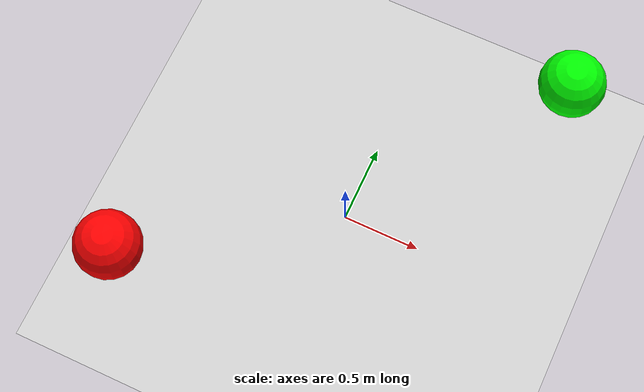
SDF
<?xml version="1.0" ?>
<!--
  Multiantenna Gnss plugin demo

  Subscribe to /gphdt to check published data.
-->
<sdf version="1.6">
  <world name="default">
    <include>
      <uri>model://ground_plane</uri>
    </include>

    <include>
      <uri>model://sun</uri>
    </include>

    <physics type="ode">
      <max_step_size>0.01</max_step_size>
      <real_time_update_rate>100</real_time_update_rate>
    </physics>

    <spherical_coordinates>
      <surface_model>EARTH_WGS84</surface_model>
      <latitude_deg>48.157034</latitude_deg>
      <longitude_deg>14.491829</longitude_deg>
      <elevation>100</elevation>
      <heading_deg>180</heading_deg>
    </spherical_coordinates>

    <include>
      <uri>model://gazebo_ros_multiantenna_gnss_test_model</uri>
      <pose>0 0 1 0 0 0</pose>
      <static>true</static>
    </include>
  </world>
</sdf>

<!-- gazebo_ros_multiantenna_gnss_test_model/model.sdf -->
<sdf version="1.6">
  <model name="multiantenna_gnss_test_model">
    <link name="aux_antenna">
      <pose>1 1 0 0 0 0</pose>
      <inertial>
        <inertia>
          <ixx>0.001</ixx>
          <ixy>0.000</ixy>
          <ixz>0.000</ixz>
          <iyy>0.001</iyy>
          <iyz>0.000</iyz>
          <izz>0.001</izz>
        </inertia>
        <mass>1.0</mass>
      </inertial>
      <visual name="aux_antenna">
        <geometry>
          <sphere>
            <radius>0.2</radius>
          </sphere>
        </geometry>
        <material>
          <ambient>0 1 0 1</ambient>
        </material>
      </visual>
      <collision name="aux_antenna">
        <geometry>
          <sphere>
            <radius>0.2</radius>
          </sphere>
        </geometry>
      </collision>
      <sensor
          name="aux_gps"
          type="gps">
        <always_on>true</always_on>
        <update_rate>1.0</update_rate>
        <gps>
          <position_sensing>
            <horizontal>
              <noise type="gaussian">
                <mean>1e-4</mean>
                <stddev>1e-5</stddev>
              </noise>
            </horizontal>
            <vertical>
              <noise type="gaussian">
                <mean>1e-4</mean>
                <stddev>1e-5</stddev>
              </noise>
            </vertical>
          </position_sensing>
        </gps>
      </sensor>
    </link>
    <link name="main_antenna">
      <pose>-1 -1 0 0 0 0</pose>
      <inertial>
        <inertia>
          <ixx>0.001</ixx>
          <ixy>0.000</ixy>
          <ixz>0.000</ixz>
          <iyy>0.001</iyy>
          <iyz>0.000</iyz>
          <izz>0.001</izz>
        </inertia>
        <mass>1.0</mass>
      </inertial>
      <visual name="main_antenna">
        <geometry>
          <sphere>
            <radius>0.2</radius>
          </sphere>
        </geometry>
        <material>
          <ambient>1 0 0 1</ambient>
        </material>
      </visual>
      <collision name="main_antenna">
        <geometry>
          <sphere>
            <radius>0.2</radius>
          </sphere>
        </geometry>
      </collision>
      <sensor
          name="main_gps"
          type="gps">
        <always_on>true</always_on>
        <update_rate>1.0</update_rate>
        <gps>
          <position_sensing>
            <horizontal>
              <noise type="gaussian">
                <mean>1e-4</mean>
                <stddev>1e-5</stddev>
              </noise>
            </horizontal>
            <vertical>
              <noise type="gaussian">
                <mean>1e-4</mean>
                <stddev>1e-5</stddev>
              </noise>
            </vertical>
          </position_sensing>
        </gps>
        <plugin
            name="main_gps_ros"
            filename="libgazebo_ros_multiantenna_gnss.so">
          <ros>
            <remapping>~/gphdt:=gphdt</remapping>
          </ros>
          <aux_sensor>aux_gps</aux_sensor>
        </plugin>
      </sensor>
    </link>
  </model>
</sdf>
